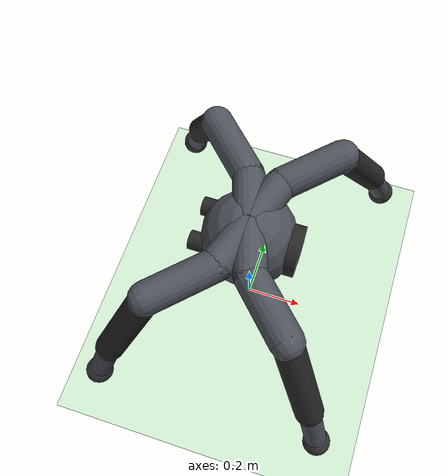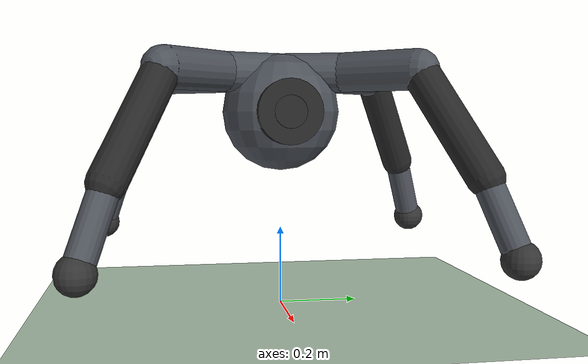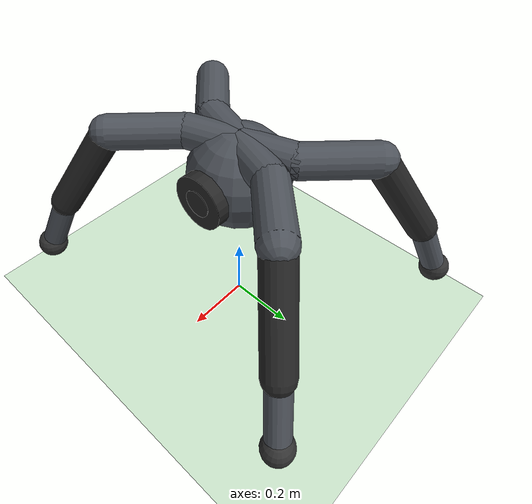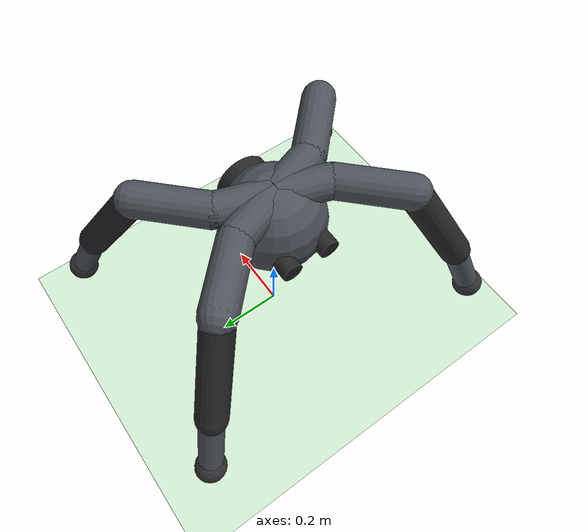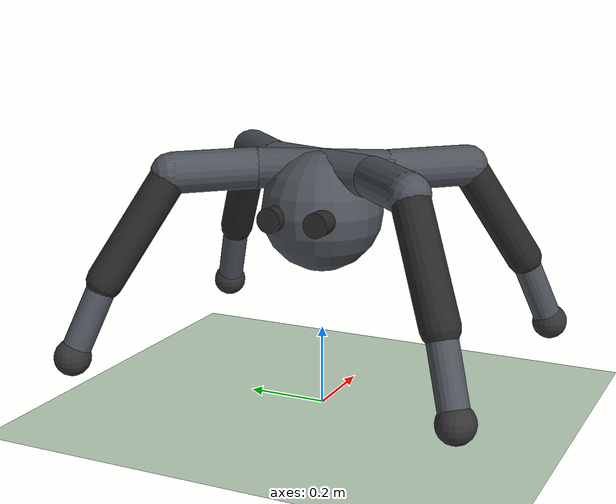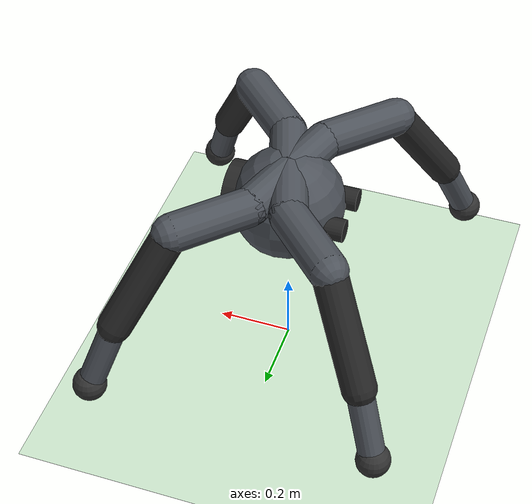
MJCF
<mujoco model="leaper">
  <compiler angle="degree" coordinate="local" inertiafromgeom="true"/>

  <option integrator="implicitfast" timestep="0.002" solver="Newton" iterations="200">
    <flag filterparent="enable"/>
  </option>

  <visual>
    <global offwidth="1200" offheight="800"/>
  </visual>

  <custom>
    <numeric data="0.0 0.0 0.50 1.0 0.0 0.0 0.0  0 0 0  0 0 0  0 0 0  0 0 0" name="init_qpos"/>
  </custom>

  <default>
    <joint armature="1" damping="1" limited="true"/>
    <default class="knee_ankle">
      <joint armature="2" damping="10"/>
    </default>
    <geom conaffinity="0" condim="3" density="5.0" friction="1 0.5 0.5" margin="0.01" rgba="0.5 0.5 0.5 1"/>
  </default>

  <asset>
    <texture builtin="gradient" height="100" rgb1="1 1 1" rgb2="0.6 0.6 0.8" type="skybox" width="100"/>
    <texture builtin="flat" height="1278" mark="cross" markrgb="1 1 1" name="texgeom" random="0.01" rgb1="0.8 0.6 0.4" rgb2="0.8 0.6 0.4" type="cube" width="127"/>
    <texture builtin="checker" height="100" name="texplane" rgb1="0.2 0.3 0.4" rgb2="0.1 0.15 0.2" type="2d" width="100"/>
    <material name="MatPlane" reflectance="0.5" shininess="1" specular="1" texrepeat="60 60" texture="texplane"/>
    <material name="geom" texture="texgeom" texuniform="true"/>
    <material name="body_mat" rgba="0.15 0.15 0.15 1" specular="0.8" shininess="0.5"/>
    <material name="armor_mat" rgba="0.30 0.32 0.35 1" specular="0.9" shininess="0.8"/>
    <material name="joint_glow" rgba="0.9 0.7 0.0 1" emission="0.6"/>
    <material name="eye_mat" rgba="0.9 0.1 0.1 1" emission="0.8"/>
    <material name="foot_mat" rgba="0.2 0.2 0.2 1" specular="0.6"/>
  </asset>

  <worldbody>
    <light cutoff="100" diffuse="1 1 1" dir="-0 0 -1.3" directional="true" exponent="1" pos="0 0 1.3" specular="0.1 0.1 0.1"/>
    <geom conaffinity="1" condim="3" material="MatPlane" name="floor" pos="0 0 0" rgba="0.8 0.9 0.8 1" size="40 40 40" type="plane"/>

    <body name="torso" pos="0 0 0.50">
      <camera name="track" mode="trackcom" pos="0 -4 1.5" xyaxes="1 0 0 0 0.5 1"/>
      <joint armature="0" damping="0" limited="false" margin="0.01" name="root" pos="0 0 0" type="free"/>
      <site name="torso_site" pos="0 0 0" size="0.01"/>

      <geom name="torso_geom" type="sphere" size="0.15" material="armor_mat"/>

      <geom name="thruster_l" type="cylinder" size="0.03 0.03" pos="-0.14 0.06 0" euler="0 90 0" material="body_mat" contype="0" conaffinity="0" mass="0"/>
      <geom name="thruster_r" type="cylinder" size="0.03 0.03" pos="-0.14 -0.06 0" euler="0 90 0" material="body_mat" contype="0" conaffinity="0" mass="0"/>

      <geom name="eye_socket" type="cylinder" size="0.08 0.02" pos="0.14 0 0" euler="0 90 0" material="body_mat" contype="0" conaffinity="0" mass="0"/>
      <geom name="eye_ring" type="cylinder" size="0.06 0.006" pos="0.15 0 0" euler="0 90 0" material="eye_mat" contype="0" conaffinity="0" mass="0"/>
      <geom name="eye_pupil" type="cylinder" size="0.04 0.01" pos="0.152 0 0" euler="0 90 0" material="body_mat" contype="0" conaffinity="0" mass="0"/>

      <body name="fl_aux" pos="0 0 0.10">
        <geom name="fl_aux_geom" fromto="0.0 0.0 0.0 0.05 0.15 0.0" size="0.05" type="capsule" material="armor_mat"/>
        <body name="fl_upper" pos="0.05 0.15 0">
          <joint name="fl_hip" type="hinge" axis="0 0 1" range="-30 30" pos="0 0 0"/>
          <geom name="fl_upper_geom" fromto="0.0 0.0 0.0 0.15 0.15 0.0" size="0.05" type="capsule" material="armor_mat"/>
          <body name="fl_middle" pos="0.15 0.15 0">
            <joint name="fl_knee" class="knee_ankle" type="hinge" axis="-1 1 0" range="-80 0" pos="0 0 0"/>
            <geom name="fl_middle_geom" fromto="0.0 0.0 0.0 0.12 0.12 -0.25" size="0.045" type="capsule" material="body_mat"/>
            <geom name="fl_middle_glow" type="cylinder" size="0.04 0.02" pos="0 0 0" euler="0 45 0" material="joint_glow" contype="0" conaffinity="0" mass="0"/>
            <body name="fl_lower" pos="0.12 0.12 -0.25">
              <joint name="fl_ankle" class="knee_ankle" type="hinge" axis="-1 1 0" range="0 100" pos="0 0 0"/>
              <geom name="fl_lower_geom" fromto="0.0 0.0 0.0 0.06 0.06 -0.18" size="0.035" type="capsule" material="armor_mat"/>
              <geom name="fl_lower_glow" type="cylinder" size="0.03 0.02" pos="0 0 0" euler="0 45 0" material="joint_glow" contype="0" conaffinity="0" mass="0"/>
              <body name="fl_foot" pos="0.06 0.06 -0.18">
                <geom name="fl_foot_geom" type="sphere" size="0.045" material="foot_mat"/>
              </body>
            </body>
          </body>
        </body>
      </body>

      <body name="fr_aux" pos="0 0 0.10">
        <geom name="fr_aux_geom" fromto="0.0 0.0 0.0 0.05 -0.15 0.0" size="0.05" type="capsule" material="armor_mat"/>
        <body name="fr_upper" pos="0.05 -0.15 0">
          <joint name="fr_hip" type="hinge" axis="0 0 1" range="-30 30" pos="0 0 0"/>
          <geom name="fr_upper_geom" fromto="0.0 0.0 0.0 0.15 -0.15 0.0" size="0.05" type="capsule" material="armor_mat"/>
          <body name="fr_middle" pos="0.15 -0.15 0">
            <joint name="fr_knee" class="knee_ankle" type="hinge" axis="1 1 0" range="-80 0" pos="0 0 0"/>
            <geom name="fr_middle_geom" fromto="0.0 0.0 0.0 0.12 -0.12 -0.25" size="0.045" type="capsule" material="body_mat"/>
            <geom name="fr_middle_glow" type="cylinder" size="0.04 0.02" pos="0 0 0" euler="0 -45 0" material="joint_glow" contype="0" conaffinity="0" mass="0"/>
            <body name="fr_lower" pos="0.12 -0.12 -0.25">
              <joint name="fr_ankle" class="knee_ankle" type="hinge" axis="1 1 0" range="0 100" pos="0 0 0"/>
              <geom name="fr_lower_geom" fromto="0.0 0.0 0.0 0.06 -0.06 -0.18" size="0.035" type="capsule" material="armor_mat"/>
              <geom name="fr_lower_glow" type="cylinder" size="0.03 0.02" pos="0 0 0" euler="0 -45 0" material="joint_glow" contype="0" conaffinity="0" mass="0"/>
              <body name="fr_foot" pos="0.06 -0.06 -0.18">
                <geom name="fr_foot_geom" type="sphere" size="0.045" material="foot_mat"/>
              </body>
            </body>
          </body>
        </body>
      </body>

      <body name="rl_aux" pos="0 0 0.10">
        <geom name="rl_aux_geom" fromto="0.0 0.0 0.0 -0.05 0.15 0.0" size="0.05" type="capsule" material="armor_mat"/>
        <body name="rl_upper" pos="-0.05 0.15 0">
          <joint name="rl_hip" type="hinge" axis="0 0 1" range="-30 30" pos="0 0 0"/>
          <geom name="rl_upper_geom" fromto="0.0 0.0 0.0 -0.15 0.15 0.0" size="0.05" type="capsule" material="armor_mat"/>
          <body name="rl_middle" pos="-0.15 0.15 0">
            <joint name="rl_knee" class="knee_ankle" type="hinge" axis="1 1 0" range="-80 0" pos="0 0 0"/>
            <geom name="rl_middle_geom" fromto="0.0 0.0 0.0 -0.12 0.12 -0.25" size="0.045" type="capsule" material="body_mat"/>
            <geom name="rl_middle_glow" type="cylinder" size="0.04 0.02" pos="0 0 0" euler="0 -45 0" material="joint_glow" contype="0" conaffinity="0" mass="0"/>
            <body name="rl_lower" pos="-0.12 0.12 -0.25">
              <joint name="rl_ankle" class="knee_ankle" type="hinge" axis="1 1 0" range="-100 0" pos="0 0 0"/>
              <geom name="rl_lower_geom" fromto="0.0 0.0 0.0 -0.06 0.06 -0.18" size="0.035" type="capsule" material="armor_mat"/>
              <geom name="rl_lower_glow" type="cylinder" size="0.03 0.02" pos="0 0 0" euler="0 -45 0" material="joint_glow" contype="0" conaffinity="0" mass="0"/>
              <body name="rl_foot" pos="-0.06 0.06 -0.18">
                <geom name="rl_foot_geom" type="sphere" size="0.045" material="foot_mat"/>
              </body>
            </body>
          </body>
        </body>
      </body>

      <body name="rr_aux" pos="0 0 0.10">
        <geom name="rr_aux_geom" fromto="0.0 0.0 0.0 -0.05 -0.15 0.0" size="0.05" type="capsule" material="armor_mat"/>
        <body name="rr_upper" pos="-0.05 -0.15 0">
          <joint name="rr_hip" type="hinge" axis="0 0 1" range="-30 30" pos="0 0 0"/>
          <geom name="rr_upper_geom" fromto="0.0 0.0 0.0 -0.15 -0.15 0.0" size="0.05" type="capsule" material="armor_mat"/>
          <body name="rr_middle" pos="-0.15 -0.15 0">
            <joint name="rr_knee" class="knee_ankle" type="hinge" axis="-1 1 0" range="-80 0" pos="0 0 0"/>
            <geom name="rr_middle_geom" fromto="0.0 0.0 0.0 -0.12 -0.12 -0.25" size="0.045" type="capsule" material="body_mat"/>
            <geom name="rr_middle_glow" type="cylinder" size="0.04 0.02" pos="0 0 0" euler="0 45 0" material="joint_glow" contype="0" conaffinity="0" mass="0"/>
            <body name="rr_lower" pos="-0.12 -0.12 -0.25">
              <joint name="rr_ankle" class="knee_ankle" type="hinge" axis="-1 1 0" range="-100 0" pos="0 0 0"/>
              <geom name="rr_lower_geom" fromto="0.0 0.0 0.0 -0.06 -0.06 -0.18" size="0.035" type="capsule" material="armor_mat"/>
              <geom name="rr_lower_glow" type="cylinder" size="0.03 0.02" pos="0 0 0" euler="0 45 0" material="joint_glow" contype="0" conaffinity="0" mass="0"/>
              <body name="rr_foot" pos="-0.06 -0.06 -0.18">
                <geom name="rr_foot_geom" type="sphere" size="0.045" material="foot_mat"/>
              </body>
            </body>
          </body>
        </body>
      </body>

    </body>
  </worldbody>

  <contact>
    <exclude body1="torso" body2="fl_aux"/>
    <exclude body1="torso" body2="fr_aux"/>
    <exclude body1="torso" body2="rl_aux"/>
    <exclude body1="torso" body2="rr_aux"/>
  </contact>

  <actuator>
    <motor joint="fl_hip"   ctrlrange="-1 1" ctrllimited="true" gear="150"/>
    <motor joint="fl_knee"  ctrlrange="-1 1" ctrllimited="true" gear="150"/>
    <motor joint="fl_ankle" ctrlrange="-1 1" ctrllimited="true" gear="150"/>
    <motor joint="fr_hip"   ctrlrange="-1 1" ctrllimited="true" gear="150"/>
    <motor joint="fr_knee"  ctrlrange="-1 1" ctrllimited="true" gear="150"/>
    <motor joint="fr_ankle" ctrlrange="-1 1" ctrllimited="true" gear="150"/>
    <motor joint="rl_hip"   ctrlrange="-1 1" ctrllimited="true" gear="150"/>
    <motor joint="rl_knee"  ctrlrange="-1 1" ctrllimited="true" gear="150"/>
    <motor joint="rl_ankle" ctrlrange="-1 1" ctrllimited="true" gear="150"/>
    <motor joint="rr_hip"   ctrlrange="-1 1" ctrllimited="true" gear="150"/>
    <motor joint="rr_knee"  ctrlrange="-1 1" ctrllimited="true" gear="150"/>
    <motor joint="rr_ankle" ctrlrange="-1 1" ctrllimited="true" gear="150"/>
  </actuator>

  <sensor>
    <jointpos name="fl_hip_pos" joint="fl_hip"/>
    <jointpos name="fl_knee_pos" joint="fl_knee"/>
    <jointpos name="fl_ankle_pos" joint="fl_ankle"/>
    <jointpos name="fr_hip_pos" joint="fr_hip"/>
    <jointpos name="fr_knee_pos" joint="fr_knee"/>
    <jointpos name="fr_ankle_pos" joint="fr_ankle"/>
    <jointpos name="rl_hip_pos" joint="rl_hip"/>
    <jointpos name="rl_knee_pos" joint="rl_knee"/>
    <jointpos name="rl_ankle_pos" joint="rl_ankle"/>
    <jointpos name="rr_hip_pos" joint="rr_hip"/>
    <jointpos name="rr_knee_pos" joint="rr_knee"/>
    <jointpos name="rr_ankle_pos" joint="rr_ankle"/>
    <jointvel name="fl_hip_vel" joint="fl_hip"/>
    <jointvel name="fl_knee_vel" joint="fl_knee"/>
    <jointvel name="fl_ankle_vel" joint="fl_ankle"/>
    <jointvel name="fr_hip_vel" joint="fr_hip"/>
    <jointvel name="fr_knee_vel" joint="fr_knee"/>
    <jointvel name="fr_ankle_vel" joint="fr_ankle"/>
    <jointvel name="rl_hip_vel" joint="rl_hip"/>
    <jointvel name="rl_knee_vel" joint="rl_knee"/>
    <jointvel name="rl_ankle_vel" joint="rl_ankle"/>
    <jointvel name="rr_hip_vel" joint="rr_hip"/>
    <jointvel name="rr_knee_vel" joint="rr_knee"/>
    <jointvel name="rr_ankle_vel" joint="rr_ankle"/>
    <accelerometer name="torso_accel" site="torso_site"/>
    <gyro name="torso_gyro" site="torso_site"/>
  </sensor>
</mujoco>
